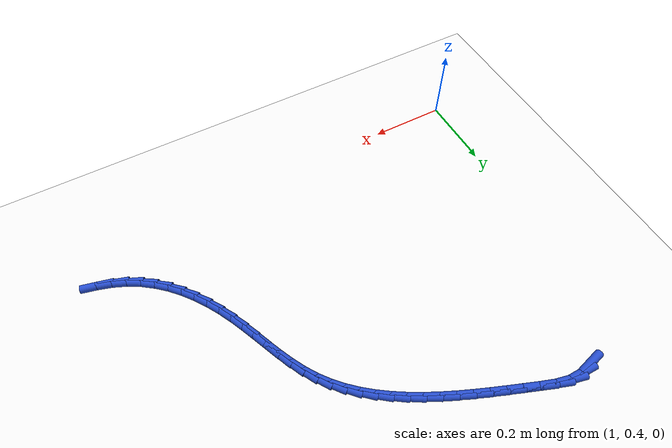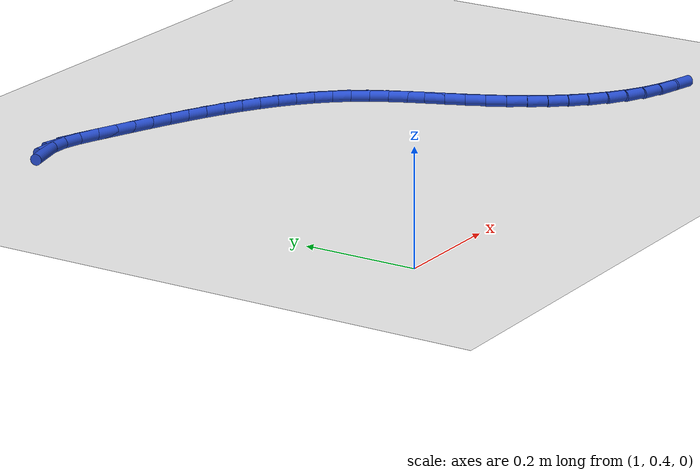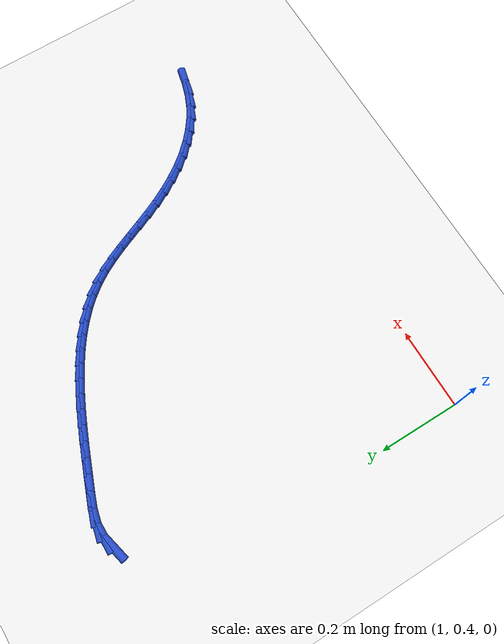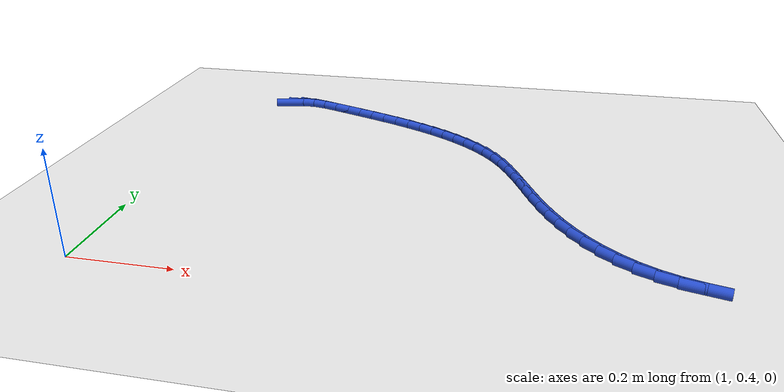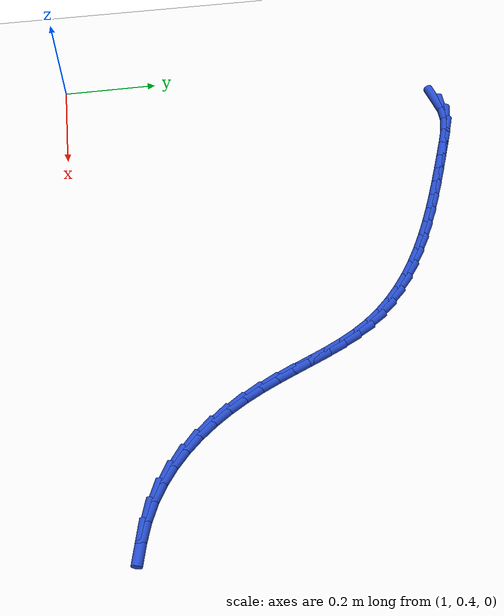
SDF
<sdf version="1.6">
 <world name="default">
  <model name="ground_plane">
   <static>1</static>
   <link name="link">
    <collision name="collision">
     <geometry><plane><normal>0 0 1</normal><size>100 100</size></plane></geometry>
     <surface><friction><ode><mu>100</mu><mu2>50</mu2></ode></friction></surface>
    </collision>
    <visual name="visual">
     <cast_shadows>0</cast_shadows>
     <geometry><plane><normal>0 0 1</normal><size>100 100</size></plane></geometry>
     <material>
      <script><uri>file://media/materials/scripts/gazebo.material</uri><name>Gazebo/WhiteGlow</name></script>
     </material>
    </visual>
   </link>
  </model>
  <model name="line">
   <link name="link_53">
    <pose>1.1377205048458492 1.2163292249294364 0.01 0 1.57 0.23354562962634384</pose>
    <collision name="collision">
     <geometry><cylinder><radius>0.01</radius><length>0.08</length></cylinder></geometry>
    </collision>
    <visual name="visual">
     <material>
      <script><name>Gazebo/Blue</name><uri>file://media/materials/scripts/gazebo.material</uri></script>
     </material>
     <geometry><cylinder><radius>0.01</radius><length>0.08</length></cylinder></geometry>
    </visual>
   </link>
   <link name="link_54">
    <pose>1.1669579264678434 1.2232844127584808 0.01 0 1.57 -0.012354326176410944</pose>
    <collision name="collision">
     <geometry><cylinder><radius>0.01</radius><length>0.08</length></cylinder></geometry>
    </collision>
    <visual name="visual">
     <material>
      <script><name>Gazebo/Blue</name><uri>file://media/materials/scripts/gazebo.material</uri></script>
     </material>
     <geometry><cylinder><radius>0.01</radius><length>0.08</length></cylinder></geometry>
    </visual>
   </link>
   <link name="link_55">
    <pose>1.1978321677283736 1.2229029629044839 0.01 0 1.57 -0.23482022662056876</pose>
    <collision name="collision">
     <geometry><cylinder><radius>0.01</radius><length>0.08</length></cylinder></geometry>
    </collision>
    <visual name="visual">
     <material>
      <script><name>Gazebo/Blue</name><uri>file://media/materials/scripts/gazebo.material</uri></script>
     </material>
     <geometry><cylinder><radius>0.01</radius><length>0.08</length></cylinder></geometry>
    </visual>
   </link>
   <link name="link_56">
    <pose>1.2305667169351786 1.2150717577655303 0.01 0 1.57 -0.34549519572329923</pose>
    <collision name="collision">
     <geometry><cylinder><radius>0.01</radius><length>0.08</length></cylinder></geometry>
    </collision>
    <visual name="visual">
     <material>
      <script><name>Gazebo/Blue</name><uri>file://media/materials/scripts/gazebo.material</uri></script>
     </material>
     <geometry><cylinder><radius>0.01</radius><length>0.08</length></cylinder></geometry>
    </visual>
   </link>
   <link name="link_57">
    <pose>1.2645242254718843 1.20284937090862 0.01 0 1.57 -0.36834525169890103</pose>
    <collision name="collision">
     <geometry><cylinder><radius>0.01</radius><length>0.08</length></cylinder></geometry>
    </collision>
    <visual name="visual">
     <material>
      <script><name>Gazebo/Blue</name><uri>file://media/materials/scripts/gazebo.material</uri></script>
     </material>
     <geometry><cylinder><radius>0.01</radius><length>0.08</length></cylinder></geometry>
    </visual>
   </link>
   <link name="link_58">
    <pose>1.2989614365680435 1.1895579609489573 0.01 0 1.57 -0.369934051005723</pose>
    <collision name="collision">
     <geometry><cylinder><radius>0.01</radius><length>0.08</length></cylinder></geometry>
    </collision>
    <visual name="visual">
     <material>
      <script><name>Gazebo/Blue</name><uri>file://media/materials/scripts/gazebo.material</uri></script>
     </material>
     <geometry><cylinder><radius>0.01</radius><length>0.08</length></cylinder></geometry>
    </visual>
   </link>
   <link name="link_59">
    <pose>1.333508387578357 1.1761610923221923 0.01 0 1.57 -0.3769370977065394</pose>
    <collision name="collision">
     <geometry><cylinder><radius>0.01</radius><length>0.08</length></cylinder></geometry>
    </collision>
    <visual name="visual">
     <material>
      <script><name>Gazebo/Blue</name><uri>file://media/materials/scripts/gazebo.material</uri></script>
     </material>
     <geometry><cylinder><radius>0.01</radius><length>0.08</length></cylinder></geometry>
    </visual>
   </link>
   <link name="link_60">
    <pose>1.3679697342631993 1.1625190333563753 0.01 0 1.57 -0.38957011054085855</pose>
    <collision name="collision">
     <geometry><cylinder><radius>0.01</radius><length>0.08</length></cylinder></geometry>
    </collision>
    <visual name="visual">
     <material>
      <script><name>Gazebo/Blue</name><uri>file://media/materials/scripts/gazebo.material</uri></script>
     </material>
     <geometry><cylinder><radius>0.01</radius><length>0.08</length></cylinder></geometry>
    </visual>
   </link>
   <link name="link_61">
    <pose>1.402151125338897 1.1484857785595965 0.01 0 1.57 -0.4080096239372377</pose>
    <collision name="collision">
     <geometry><cylinder><radius>0.01</radius><length>0.08</length></cylinder></geometry>
    </collision>
    <visual name="visual">
     <material>
      <script><name>Gazebo/Blue</name><uri>file://media/materials/scripts/gazebo.material</uri></script>
     </material>
     <geometry><cylinder><radius>0.01</radius><length>0.08</length></cylinder></geometry>
    </visual>
   </link>
   <link name="link_62">
    <pose>1.4358582095217785 1.1339153224399448 0.01 0 1.57 -0.4325364883144789</pose>
    <collision name="collision">
     <geometry><cylinder><radius>0.01</radius><length>0.08</length></cylinder></geometry>
    </collision>
    <visual name="visual">
     <material>
      <script><name>Gazebo/Blue</name><uri>file://media/materials/scripts/gazebo.material</uri></script>
     </material>
     <geometry><cylinder><radius>0.01</radius><length>0.08</length></cylinder></geometry>
    </visual>
   </link>
   <link name="link_63">
    <pose>1.4688966355281714 1.118661659505509 0.01 0 1.57 -0.46352743470910035</pose>
    <collision name="collision">
     <geometry><cylinder><radius>0.01</radius><length>0.08</length></cylinder></geometry>
    </collision>
    <visual name="visual">
     <material>
      <script><name>Gazebo/Blue</name><uri>file://media/materials/scripts/gazebo.material</uri></script>
     </material>
     <geometry><cylinder><radius>0.01</radius><length>0.08</length></cylinder></geometry>
    </visual>
   </link>
   <link name="link_64">
    <pose>1.5010720520744034 1.1025787842643804 0.01 0 1.57 -0.5014398132862841</pose>
    <collision name="collision">
     <geometry><cylinder><radius>0.01</radius><length>0.08</length></cylinder></geometry>
    </collision>
    <visual name="visual">
     <material>
      <script><name>Gazebo/Blue</name><uri>file://media/materials/scripts/gazebo.material</uri></script>
     </material>
     <geometry><cylinder><radius>0.01</radius><length>0.08</length></cylinder></geometry>
    </visual>
   </link>
   <link name="link_65">
    <pose>1.5321901078768023 1.085520691224647 0.01 0 1.57 -0.5467840213888382</pose>
    <collision name="collision">
     <geometry><cylinder><radius>0.01</radius><length>0.08</length></cylinder></geometry>
    </collision>
    <visual name="visual">
     <material>
      <script><name>Gazebo/Blue</name><uri>file://media/materials/scripts/gazebo.material</uri></script>
     </material>
     <geometry><cylinder><radius>0.01</radius><length>0.08</length></cylinder></geometry>
    </visual>
   </link>
   <link name="link_66">
    <pose>1.5620564516516964 1.0673413748943985 0.01 0 1.57 -0.6000763377242626</pose>
    <collision name="collision">
     <geometry><cylinder><radius>0.01</radius><length>0.08</length></cylinder></geometry>
    </collision>
    <visual name="visual">
     <material>
      <script><name>Gazebo/Blue</name><uri>file://media/materials/scripts/gazebo.material</uri></script>
     </material>
     <geometry><cylinder><radius>0.01</radius><length>0.08</length></cylinder></geometry>
    </visual>
   </link>
   <link name="link_67">
    <pose>1.5904767321154125 1.0478948297817245 0.01 0 1.57 -0.6617639091767967</pose>
    <collision name="collision">
     <geometry><cylinder><radius>0.01</radius><length>0.08</length></cylinder></geometry>
    </collision>
    <visual name="visual">
     <material>
      <script><name>Gazebo/Blue</name><uri>file://media/materials/scripts/gazebo.material</uri></script>
     </material>
     <geometry><cylinder><radius>0.01</radius><length>0.08</length></cylinder></geometry>
    </visual>
   </link>
   <link name="link_68">
    <pose>1.6172565979842786 1.027035050394715 0.01 0 1.57 -0.7321154279929465</pose>
    <collision name="collision">
     <geometry><cylinder><radius>0.01</radius><length>0.08</length></cylinder></geometry>
    </collision>
    <visual name="visual">
     <material>
      <script><name>Gazebo/Blue</name><uri>file://media/materials/scripts/gazebo.material</uri></script>
     </material>
     <geometry><cylinder><radius>0.01</radius><length>0.08</length></cylinder></geometry>
    </visual>
   </link>
   <link name="link_69">
    <pose>1.642201697974623 1.0046160312414587 0.01 0 1.57 -0.8110786397383414</pose>
    <collision name="collision">
     <geometry><cylinder><radius>0.01</radius><length>0.08</length></cylinder></geometry>
    </collision>
    <visual name="visual">
     <material>
      <script><name>Gazebo/Blue</name><uri>file://media/materials/scripts/gazebo.material</uri></script>
     </material>
     <geometry><cylinder><radius>0.01</radius><length>0.08</length></cylinder></geometry>
    </visual>
   </link>
   <link name="link_70">
    <pose>1.6651176808027737 0.9804917668300461 0.01 0 1.57 -0.8981221280467298</pose>
    <collision name="collision">
     <geometry><cylinder><radius>0.01</radius><length>0.08</length></cylinder></geometry>
    </collision>
    <visual name="visual">
     <material>
      <script><name>Gazebo/Blue</name><uri>file://media/materials/scripts/gazebo.material</uri></script>
     </material>
     <geometry><cylinder><radius>0.01</radius><length>0.08</length></cylinder></geometry>
    </visual>
   </link>
   <link name="link_71">
    <pose>1.6858101951850573 0.9545162516685659 0.01 0 1.57 -0.9898430854239947</pose>
    <collision name="collision">
     <geometry><cylinder><radius>0.01</radius><length>0.08</length></cylinder></geometry>
    </collision>
    <visual name="visual">
     <material>
      <script><name>Gazebo/Blue</name><uri>file://media/materials/scripts/gazebo.material</uri></script>
     </material>
     <geometry><cylinder><radius>0.01</radius><length>0.08</length></cylinder></geometry>
    </visual>
   </link>
   <link name="link_72">
    <pose>1.7041473118764539 0.9265859685996188 0.01 0 1.57 -1.06720877741418</pose>
    <collision name="collision">
     <geometry><cylinder><radius>0.01</radius><length>0.08</length></cylinder></geometry>
    </collision>
    <visual name="visual">
     <material>
      <script><name>Gazebo/Blue</name><uri>file://media/materials/scripts/gazebo.material</uri></script>
     </material>
     <geometry><cylinder><radius>0.01</radius><length>0.08</length></cylinder></geometry>
    </visual>
   </link>
   <link name="link_73">
    <pose>1.7204865536937664 0.8969305520798676 0.01 0 1.57 -1.1218937048782442</pose>
    <collision name="collision">
     <geometry><cylinder><radius>0.01</radius><length>0.08</length></cylinder></geometry>
    </collision>
    <visual name="visual">
     <material>
      <script><name>Gazebo/Blue</name><uri>file://media/materials/scripts/gazebo.material</uri></script>
     </material>
     <geometry><cylinder><radius>0.01</radius><length>0.08</length></cylinder></geometry>
    </visual>
   </link>
   <link name="link_74">
    <pose>1.7354163226657566 0.8659367873640151 0.01 0 1.57 -1.1548604417931472</pose>
    <collision name="collision">
     <geometry><cylinder><radius>0.01</radius><length>0.08</length></cylinder></geometry>
    </collision>
    <visual name="visual">
     <material>
      <script><name>Gazebo/Blue</name><uri>file://media/materials/scripts/gazebo.material</uri></script>
     </material>
     <geometry><cylinder><radius>0.01</radius><length>0.08</length></cylinder></geometry>
    </visual>
   </link>
   <link name="link_75">
    <pose>1.7495263804599803 0.8339923851617661 0.01 0 1.57 -1.1672464423177176</pose>
    <collision name="collision">
     <geometry><cylinder><radius>0.01</radius><length>0.08</length></cylinder></geometry>
    </collision>
    <visual name="visual">
     <material>
      <script><name>Gazebo/Blue</name><uri>file://media/materials/scripts/gazebo.material</uri></script>
     </material>
     <geometry><cylinder><radius>0.01</radius><length>0.08</length></cylinder></geometry>
    </visual>
   </link>
   <link name="link_76">
    <pose>1.763406488743996 0.8014850561828258 0.01 0 1.57 -1.1598942168717836</pose>
    <collision name="collision">
     <geometry><cylinder><radius>0.01</radius><length>0.08</length></cylinder></geometry>
    </collision>
    <visual name="visual">
     <material>
      <script><name>Gazebo/Blue</name><uri>file://media/materials/scripts/gazebo.material</uri></script>
     </material>
     <geometry><cylinder><radius>0.01</radius><length>0.08</length></cylinder></geometry>
    </visual>
   </link>
   <link name="link_77">
    <pose>1.7776464091853594 0.7688025111368998 0.01 0 1.57 -1.1332387958826544</pose>
    <collision name="collision">
     <geometry><cylinder><radius>0.01</radius><length>0.08</length></cylinder></geometry>
    </collision>
    <visual name="visual">
     <material>
      <script><name>Gazebo/Blue</name><uri>file://media/materials/scripts/gazebo.material</uri></script>
     </material>
     <geometry><cylinder><radius>0.01</radius><length>0.08</length></cylinder></geometry>
    </visual>
   </link>
   <link name="link_78">
    <pose>1.792835903451629 0.7363324607336933 0.01 0 1.57 -1.0879475176500455</pose>
    <collision name="collision">
     <geometry><cylinder><radius>0.01</radius><length>0.08</length></cylinder></geometry>
    </collision>
    <visual name="visual">
     <material>
      <script><name>Gazebo/Blue</name><uri>file://media/materials/scripts/gazebo.material</uri></script>
     </material>
     <geometry><cylinder><radius>0.01</radius><length>0.08</length></cylinder></geometry>
    </visual>
   </link>
   <link name="link_79">
    <pose>1.809543944156576 0.7044613122296399 0.01 0 1.57 -1.0313115824833643</pose>
    <collision name="collision">
     <geometry><cylinder><radius>0.01</radius><length>0.08</length></cylinder></geometry>
    </collision>
    <visual name="visual">
     <material>
      <script><name>Gazebo/Blue</name><uri>file://media/materials/scripts/gazebo.material</uri></script>
     </material>
     <geometry><cylinder><radius>0.01</radius><length>0.08</length></cylinder></geometry>
    </visual>
   </link>
   <link name="link_80">
    <pose>1.8280471793707649 0.6735571444191857 0.01 0 1.57 -0.9680225889423671</pose>
    <collision name="collision">
     <geometry><cylinder><radius>0.01</radius><length>0.08</length></cylinder></geometry>
    </collision>
    <visual name="visual">
     <material>
      <script><name>Gazebo/Blue</name><uri>file://media/materials/scripts/gazebo.material</uri></script>
     </material>
     <geometry><cylinder><radius>0.01</radius><length>0.08</length></cylinder></geometry>
    </visual>
   </link>
   <link name="link_81">
    <pose>1.8484064409963321 0.643974504634804 0.01 0 1.57 -0.8972457717322905</pose>
    <collision name="collision">
     <geometry><cylinder><radius>0.01</radius><length>0.08</length></cylinder></geometry>
    </collision>
    <visual name="visual">
     <material>
      <script><name>Gazebo/Blue</name><uri>file://media/materials/scripts/gazebo.material</uri></script>
     </material>
     <geometry><cylinder><radius>0.01</radius><length>0.08</length></cylinder></geometry>
    </visual>
   </link>
   <link name="link_82">
    <pose>1.8706775165778693 0.6160676239327012 0.01 0 1.57 -0.8180752421338745</pose>
    <collision name="collision">
     <geometry><cylinder><radius>0.01</radius><length>0.08</length></cylinder></geometry>
    </collision>
    <visual name="visual">
     <material>
      <script><name>Gazebo/Blue</name><uri>file://media/materials/scripts/gazebo.material</uri></script>
     </material>
     <geometry><cylinder><radius>0.01</radius><length>0.08</length></cylinder></geometry>
    </visual>
   </link>
   <link name="link_83">
    <pose>1.8949161936599652 0.5901907333690837 0.01 0 1.57 -0.729794570306116</pose>
    <collision name="collision">
     <geometry><cylinder><radius>0.01</radius><length>0.08</length></cylinder></geometry>
    </collision>
    <visual name="visual">
     <material>
      <script><name>Gazebo/Blue</name><uri>file://media/materials/scripts/gazebo.material</uri></script>
     </material>
     <geometry><cylinder><radius>0.01</radius><length>0.08</length></cylinder></geometry>
    </visual>
   </link>
   <link name="link_84">
    <pose>1.9211782597872125 0.5666980640001578 0.01 0 1.57 -0.632074817677574</pose>
    <collision name="collision">
     <geometry><cylinder><radius>0.01</radius><length>0.08</length></cylinder></geometry>
    </collision>
    <visual name="visual">
     <material>
      <script><name>Gazebo/Blue</name><uri>file://media/materials/scripts/gazebo.material</uri></script>
     </material>
     <geometry><cylinder><radius>0.01</radius><length>0.08</length></cylinder></geometry>
    </visual>
   </link>
   <link name="link_85">
    <pose>1.9495195025042003 0.545943846882129 0.01 0 1.57 -0.5252236216582464</pose>
    <collision name="collision">
     <geometry><cylinder><radius>0.01</radius><length>0.08</length></cylinder></geometry>
    </collision>
    <visual name="visual">
     <material>
      <script><name>Gazebo/Blue</name><uri>file://media/materials/scripts/gazebo.material</uri></script>
     </material>
     <geometry><cylinder><radius>0.01</radius><length>0.08</length></cylinder></geometry>
    </visual>
   </link>
   <link name="link_86">
    <pose>1.9799957093555192 0.5282823130712044 0.01 0 1.57 -0.4107193899825467</pose>
    <collision name="collision">
     <geometry><cylinder><radius>0.01</radius><length>0.08</length></cylinder></geometry>
    </collision>
    <visual name="visual">
     <material>
      <script><name>Gazebo/Blue</name><uri>file://media/materials/scripts/gazebo.material</uri></script>
     </material>
     <geometry><cylinder><radius>0.01</radius><length>0.08</length></cylinder></geometry>
    </visual>
   </link>
   <link name="link_87">
    <pose>2.012656753294385 0.5140588609305979 0.01 0 1.57 -0.30753480163709424</pose>
    <collision name="collision">
     <geometry><cylinder><radius>0.01</radius><length>0.08</length></cylinder></geometry>
    </collision>
    <visual name="visual">
     <material>
      <script><name>Gazebo/Blue</name><uri>file://media/materials/scripts/gazebo.material</uri></script>
     </material>
     <geometry><cylinder><radius>0.01</radius><length>0.08</length></cylinder></geometry>
    </visual>
   </link>
   <link name="link_88">
    <pose>2.0471972749186067 0.5030883942996339 0.01 0 1.57 -0.24058591781186892</pose>
    <collision name="collision">
     <geometry><cylinder><radius>0.01</radius><length>0.08</length></cylinder></geometry>
    </collision>
    <visual name="visual">
     <material>
      <script><name>Gazebo/Blue</name><uri>file://media/materials/scripts/gazebo.material</uri></script>
     </material>
     <geometry><cylinder><radius>0.01</radius><length>0.08</length></cylinder></geometry>
    </visual>
   </link>
  </model>
 </world>
</sdf>
